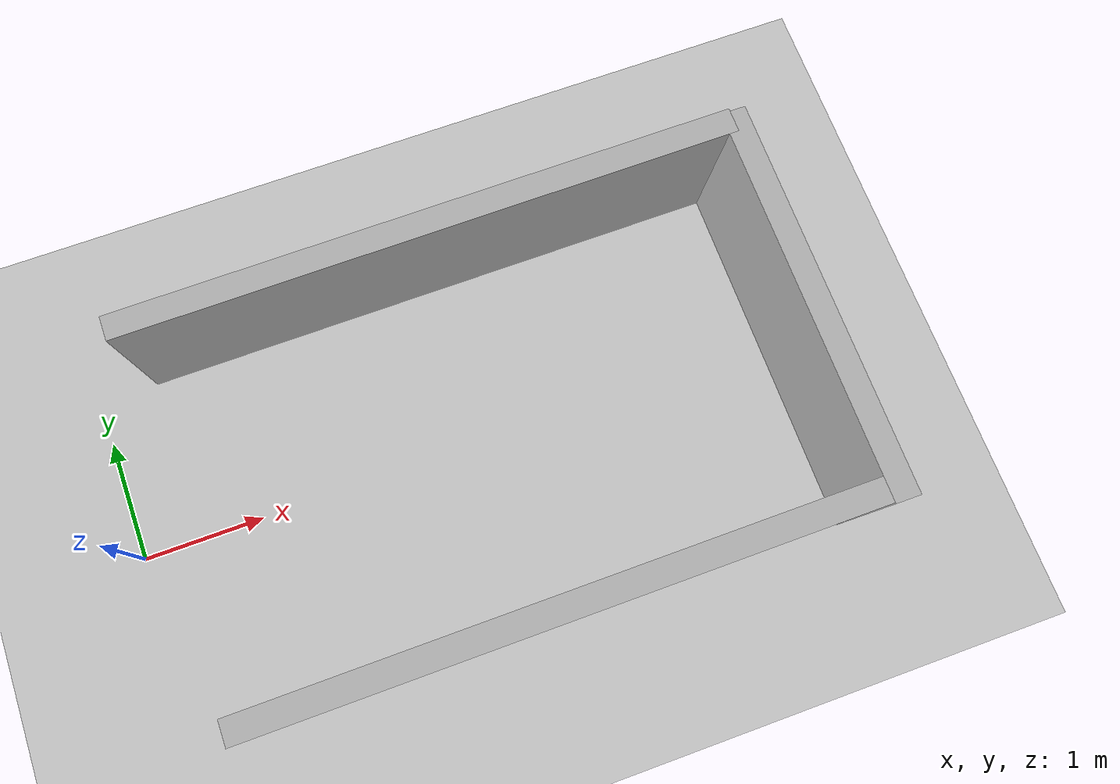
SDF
<?xml version="1.0"?>
<sdf version="1.6">
  <world name="v2-04d-maneuver-s4610">
    <gravity>0 0 -9.81</gravity>
    <physics name="v2_deterministic" type="ode">
      <max_step_size>0.002</max_step_size>
      <real_time_update_rate>500</real_time_update_rate>
    </physics>
    <include>
      <uri>model://sun</uri>
    </include>
    <include>
      <uri>model://ground_plane</uri>
    </include>
    <model name="bay-left">
      <static>true</static>
      <pose>2.983373178 1.496548029 0.600000000 0 0 0.003526308</pose>
      <link name="link">
        <collision name="collision">
          <geometry>
            <box>
              <size>5.000000 0.200000 1.200000</size>
            </box>
          </geometry>
        </collision>
        <visual name="visual">
          <geometry>
            <box>
              <size>5.000000 0.200000 1.200000</size>
            </box>
          </geometry>
        </visual>
      </link>
    </model>
    <model name="bay-right">
      <static>true</static>
      <pose>3.015017856 -1.516139684 0.600000000 0 0 0.003504173</pose>
      <link name="link">
        <collision name="collision">
          <geometry>
            <box>
              <size>5.000000 0.200000 1.200000</size>
            </box>
          </geometry>
        </collision>
        <visual name="visual">
          <geometry>
            <box>
              <size>5.000000 0.200000 1.200000</size>
            </box>
          </geometry>
        </visual>
      </link>
    </model>
    <model name="bay-back">
      <static>true</static>
      <pose>5.505702223 -0.017140219 0.600000000 0 0 -0.001347444</pose>
      <link name="link">
        <collision name="collision">
          <geometry>
            <box>
              <size>0.200000 3.200000 1.200000</size>
            </box>
          </geometry>
        </collision>
        <visual name="visual">
          <geometry>
            <box>
              <size>0.200000 3.200000 1.200000</size>
            </box>
          </geometry>
        </visual>
      </link>
    </model>
  </world>
</sdf>
